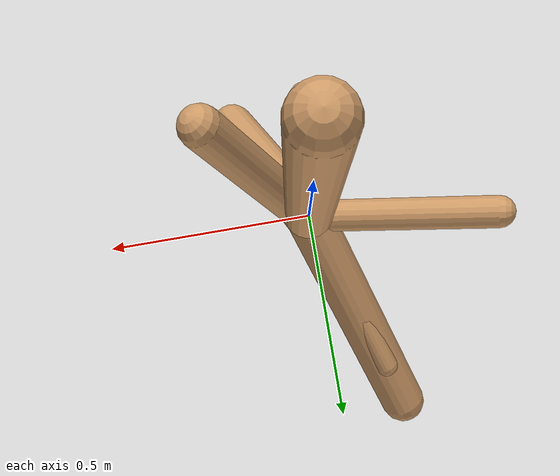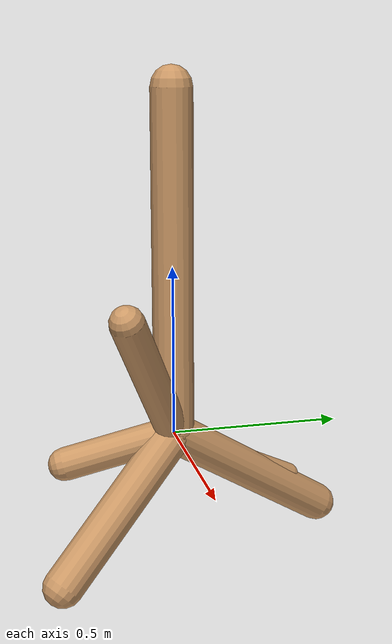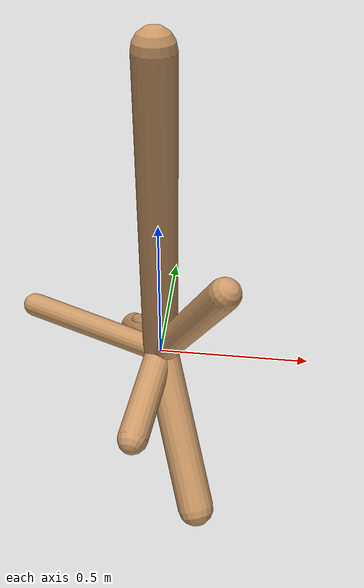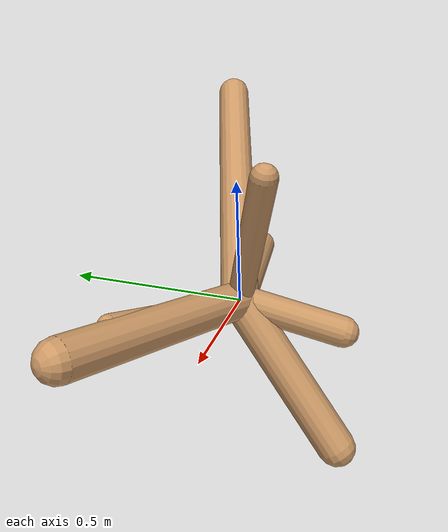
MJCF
<!--
                    joint_number: 6
                    -->
                    <mujoco model="randomrobot">
                        <compiler angle="degree" coordinate="global" inertiafromgeom="true"/>
                        <default>
                        <joint armature="0.01" damping=".1" limited="true"/>
                        <geom conaffinity="0" condim="3" contype="1" density="1000" friction="0.8 .1 .1" rgba="0.8 0.6 .4 1"/>
                        </default>
                        <option integrator="RK4" timestep="0.002"/>
                        <worldbody>
                    <body name='torso' pos='0.00 0.00 0.89'><geom fromto='0 0 0 0.00 0.00 1.00' name='torso_geom' size='0.06' type='capsule'/><inertial mass='0.3'/><body name='L0_D1' pos='0.00 0.00 0.30'><joint axis='1 0 0' name='L0_D1_joint' pos='0 0 0' range='10.52 121.19' type='hinge'/><geom fromto='0 0 0 -0.19 0.52 -0.36' name='L0_D1_geom' size='0.06' type='capsule'/><inertial mass='0.3'/></body><body name='L1_D1' pos='0.00 0.00 0.09'><joint axis='0 1 0' name='L1_D1_joint' pos='0 0 0' range='84.14 85.45' type='hinge'/><geom fromto='0 0 0 0.16 -0.36 -0.38' name='L1_D1_geom' size='0.06' type='capsule'/><inertial mass='0.3'/></body><body name='L2_D1' pos='0.00 0.00 0.68'><joint axis='0 0 1' name='L2_D1_joint' pos='0 0 0' range='95.56 122.48' type='hinge'/><geom fromto='0 0 0 -0.45 0.08 0.10' name='L2_D1_geom' size='0.04' type='capsule'/><inertial mass='0.3'/><body name='L3_D0' pos='-0.11 0.02 0.02'><joint axis='0 1 0' name='L3_D0_joint' pos='0 0 0' range='80.08 130.80' type='hinge'/><geom fromto='0 0 0 -0.15 0.41 -0.23' name='L3_D0_geom' size='0.03' type='capsule'/><inertial mass='0.3'/></body></body><body name='L4_D1' pos='0.00 0.00 0.19'><joint axis='0 0 1' name='L4_D1_joint' pos='0 0 0' range='109.83 119.40' type='hinge'/><geom fromto='0 0 0 0.21 -0.17 0.40' name='L4_D1_geom' size='0.05' type='capsule'/><inertial mass='0.3'/><body name='L5_D0' pos='0.09 -0.07 0.18'><joint axis='0 0 1' name='L5_D0_joint' pos='0 0 0' range='67.21 115.97' type='hinge'/><geom fromto='0 0 0 -0.05 -0.32 -0.09' name='L5_D0_geom' size='0.05' type='capsule'/><inertial mass='0.3'/></body></body></body>
                        </worldbody>
                    </mujoco>
